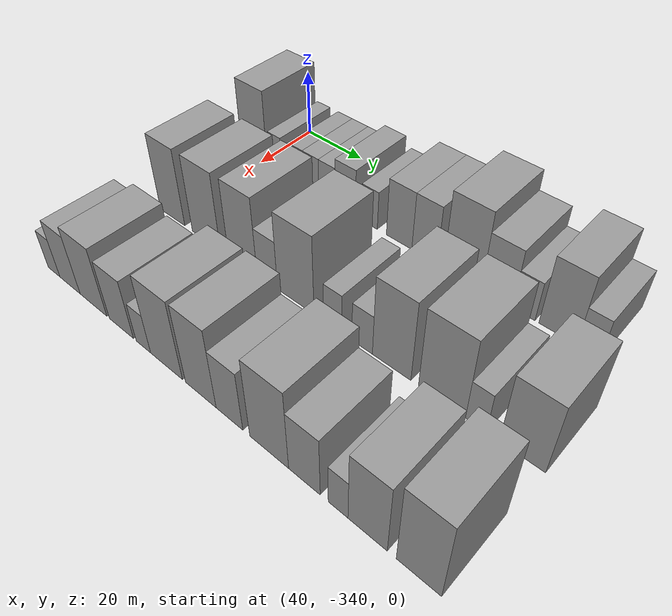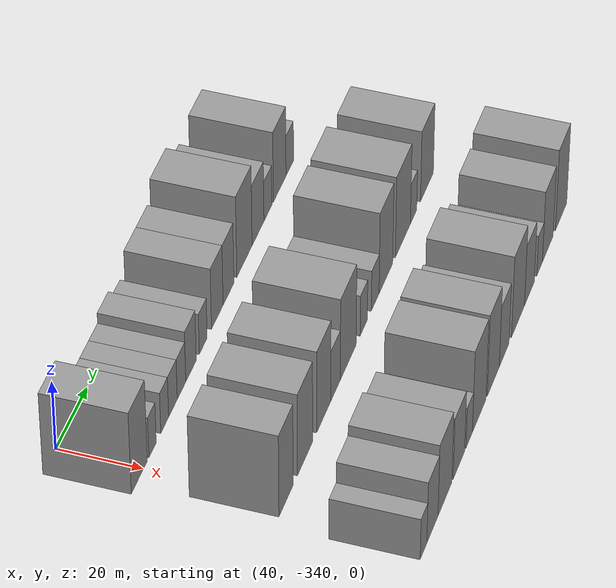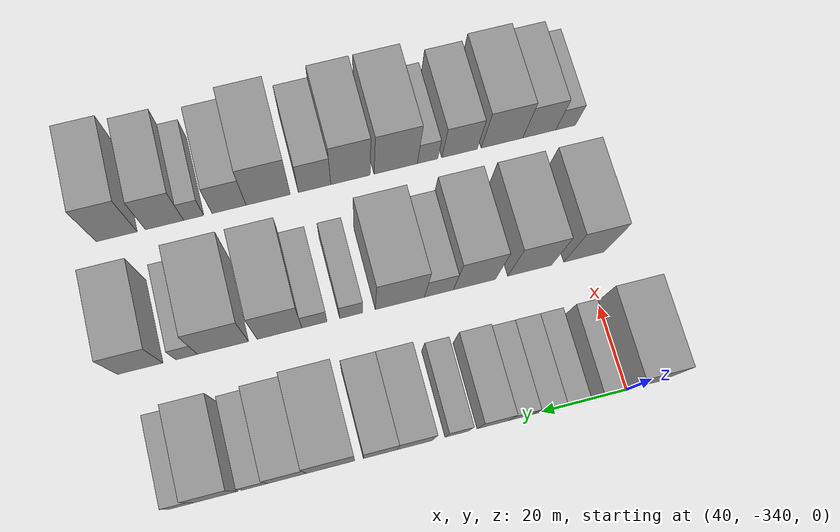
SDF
<sdf version="1.6">
 <world name="default">
  <model name="building_1">
   <static>1</static>
   <pose>50.0000 -342.7937 0 0.000000 0.000000 0.000000</pose>
   <link name="link">
    <pose>0 0 12.00 0 0 0</pose>
    <collision name="collision"><geometry><box><size>20.0000 10.4127 24.0000</size></box></geometry></collision>
    <visual name="visual">
     <cast_shadows>0</cast_shadows>
     <geometry><box><size>20.0000 10.4127 24.0000</size></box></geometry>
     <material>
      <script>
       <uri>model://grey_wall/materials/scripts</uri>
       <uri>model://grey_wall/materials/textures</uri>
       <name>vrc/grey_wall</name>
      </script>
     </material>
    </visual>
   </link>
  </model>
  <model name="building_2">
   <static>1</static>
   <pose>50.0000 -334.1725 0 0.000000 0.000000 0.000000</pose>
   <link name="link">
    <pose>0 0 6.00 0 0 0</pose>
    <collision name="collision"><geometry><box><size>20.0000 4.8296 12.0000</size></box></geometry></collision>
    <visual name="visual">
     <cast_shadows>0</cast_shadows>
     <geometry><box><size>20.0000 4.8296 12.0000</size></box></geometry>
     <material>
      <script>
       <uri>model://grey_wall/materials/scripts</uri>
       <uri>model://grey_wall/materials/textures</uri>
       <name>vrc/grey_wall</name>
      </script>
     </material>
    </visual>
   </link>
  </model>
  <model name="building_3">
   <static>1</static>
   <pose>50.0000 -326.1442 0 0.000000 0.000000 0.000000</pose>
   <link name="link">
    <pose>0 0 6.00 0 0 0</pose>
    <collision name="collision"><geometry><box><size>20.0000 5.2270 12.0000</size></box></geometry></collision>
    <visual name="visual">
     <cast_shadows>0</cast_shadows>
     <geometry><box><size>20.0000 5.2270 12.0000</size></box></geometry>
     <material>
      <script>
       <uri>model://grey_wall/materials/scripts</uri>
       <uri>model://grey_wall/materials/textures</uri>
       <name>vrc/grey_wall</name>
      </script>
     </material>
    </visual>
   </link>
  </model>
  <model name="building_4">
   <static>1</static>
   <pose>50.0000 -320.6596 0 0.000000 0.000000 0.000000</pose>
   <link name="link">
    <pose>0 0 6.00 0 0 0</pose>
    <collision name="collision"><geometry><box><size>20.0000 5.7422 12.0000</size></box></geometry></collision>
    <visual name="visual">
     <cast_shadows>0</cast_shadows>
     <geometry><box><size>20.0000 5.7422 12.0000</size></box></geometry>
     <material>
      <script>
       <uri>model://grey_wall/materials/scripts</uri>
       <uri>model://grey_wall/materials/textures</uri>
       <name>vrc/grey_wall</name>
      </script>
     </material>
    </visual>
   </link>
  </model>
  <model name="building_5">
   <static>1</static>
   <pose>50.0000 -314.8984 0 0.000000 0.000000 0.000000</pose>
   <link name="link">
    <pose>0 0 6.00 0 0 0</pose>
    <collision name="collision"><geometry><box><size>20.0000 5.7800 12.0000</size></box></geometry></collision>
    <visual name="visual">
     <cast_shadows>0</cast_shadows>
     <geometry><box><size>20.0000 5.7800 12.0000</size></box></geometry>
     <material>
      <script>
       <uri>model://grey_wall/materials/scripts</uri>
       <uri>model://grey_wall/materials/textures</uri>
       <name>vrc/grey_wall</name>
      </script>
     </material>
    </visual>
   </link>
  </model>
  <model name="building_6">
   <static>1</static>
   <pose>50.0000 -308.4191 0 0.000000 0.000000 0.000000</pose>
   <link name="link">
    <pose>0 0 7.50 0 0 0</pose>
    <collision name="collision"><geometry><box><size>20.0000 7.1786 15.0000</size></box></geometry></collision>
    <visual name="visual">
     <cast_shadows>0</cast_shadows>
     <geometry><box><size>20.0000 7.1786 15.0000</size></box></geometry>
     <material>
      <script>
       <uri>model://grey_wall/materials/scripts</uri>
       <uri>model://grey_wall/materials/textures</uri>
       <name>vrc/grey_wall</name>
      </script>
     </material>
    </visual>
   </link>
  </model>
  <model name="building_7">
   <static>1</static>
   <pose>50.0000 -300.0968 0 0.000000 0.000000 0.000000</pose>
   <link name="link">
    <pose>0 0 6.00 0 0 0</pose>
    <collision name="collision"><geometry><box><size>20.0000 5.4661 12.0000</size></box></geometry></collision>
    <visual name="visual">
     <cast_shadows>0</cast_shadows>
     <geometry><box><size>20.0000 5.4661 12.0000</size></box></geometry>
     <material>
      <script>
       <uri>model://grey_wall/materials/scripts</uri>
       <uri>model://grey_wall/materials/textures</uri>
       <name>vrc/grey_wall</name>
      </script>
     </material>
    </visual>
   </link>
  </model>
  <model name="building_8">
   <static>1</static>
   <pose>50.0000 -290.2836 0 0.000000 0.000000 0.000000</pose>
   <link name="link">
    <pose>0 0 9.00 0 0 0</pose>
    <collision name="collision"><geometry><box><size>20.0000 8.1602 18.0000</size></box></geometry></collision>
    <visual name="visual">
     <cast_shadows>0</cast_shadows>
     <geometry><box><size>20.0000 8.1602 18.0000</size></box></geometry>
     <material>
      <script>
       <uri>model://grey_wall/materials/scripts</uri>
       <uri>model://grey_wall/materials/textures</uri>
       <name>vrc/grey_wall</name>
      </script>
     </material>
    </visual>
   </link>
  </model>
  <model name="building_9">
   <static>1</static>
   <pose>50.0000 -282.3586 0 0.000000 0.000000 0.000000</pose>
   <link name="link">
    <pose>0 0 9.00 0 0 0</pose>
    <collision name="collision"><geometry><box><size>20.0000 7.6899 18.0000</size></box></geometry></collision>
    <visual name="visual">
     <cast_shadows>0</cast_shadows>
     <geometry><box><size>20.0000 7.6899 18.0000</size></box></geometry>
     <material>
      <script>
       <uri>model://grey_wall/materials/scripts</uri>
       <uri>model://grey_wall/materials/textures</uri>
       <name>vrc/grey_wall</name>
      </script>
     </material>
    </visual>
   </link>
  </model>
  <model name="building_10">
   <static>1</static>
   <pose>50.0000 -271.0136 0 0.000000 0.000000 0.000000</pose>
   <link name="link">
    <pose>0 0 12.00 0 0 0</pose>
    <collision name="collision"><geometry><box><size>20.0000 11.0002 24.0000</size></box></geometry></collision>
    <visual name="visual">
     <cast_shadows>0</cast_shadows>
     <geometry><box><size>20.0000 11.0002 24.0000</size></box></geometry>
     <material>
      <script>
       <uri>model://grey_wall/materials/scripts</uri>
       <uri>model://grey_wall/materials/textures</uri>
       <name>vrc/grey_wall</name>
      </script>
     </material>
    </visual>
   </link>
  </model>
  <model name="building_11">
   <static>1</static>
   <pose>50.0000 -261.1677 0 0.000000 0.000000 0.000000</pose>
   <link name="link">
    <pose>0 0 9.00 0 0 0</pose>
    <collision name="collision"><geometry><box><size>20.0000 8.6915 18.0000</size></box></geometry></collision>
    <visual name="visual">
     <cast_shadows>0</cast_shadows>
     <geometry><box><size>20.0000 8.6915 18.0000</size></box></geometry>
     <material>
      <script>
       <uri>model://grey_wall/materials/scripts</uri>
       <uri>model://grey_wall/materials/textures</uri>
       <name>vrc/grey_wall</name>
      </script>
     </material>
    </visual>
   </link>
  </model>
  <model name="building_12">
   <static>1</static>
   <pose>50.0000 -253.8751 0 0.000000 0.000000 0.000000</pose>
   <link name="link">
    <pose>0 0 6.00 0 0 0</pose>
    <collision name="collision"><geometry><box><size>20.0000 5.8936 12.0000</size></box></geometry></collision>
    <visual name="visual">
     <cast_shadows>0</cast_shadows>
     <geometry><box><size>20.0000 5.8936 12.0000</size></box></geometry>
     <material>
      <script>
       <uri>model://grey_wall/materials/scripts</uri>
       <uri>model://grey_wall/materials/textures</uri>
       <name>vrc/grey_wall</name>
      </script>
     </material>
    </visual>
   </link>
  </model>
  <model name="building_13">
   <static>1</static>
   <pose>50.0000 -245.1650 0 0.000000 0.000000 0.000000</pose>
   <link name="link">
    <pose>0 0 10.50 0 0 0</pose>
    <collision name="collision"><geometry><box><size>20.0000 9.5266 21.0000</size></box></geometry></collision>
    <visual name="visual">
     <cast_shadows>0</cast_shadows>
     <geometry><box><size>20.0000 9.5266 21.0000</size></box></geometry>
     <material>
      <script>
       <uri>model://grey_wall/materials/scripts</uri>
       <uri>model://grey_wall/materials/textures</uri>
       <name>vrc/grey_wall</name>
      </script>
     </material>
    </visual>
   </link>
  </model>
  <model name="building_14">
   <static>1</static>
   <pose>50.0000 -237.5346 0 0.000000 0.000000 0.000000</pose>
   <link name="link">
    <pose>0 0 6.00 0 0 0</pose>
    <collision name="collision"><geometry><box><size>20.0000 5.7343 12.0000</size></box></geometry></collision>
    <visual name="visual">
     <cast_shadows>0</cast_shadows>
     <geometry><box><size>20.0000 5.7343 12.0000</size></box></geometry>
     <material>
      <script>
       <uri>model://grey_wall/materials/scripts</uri>
       <uri>model://grey_wall/materials/textures</uri>
       <name>vrc/grey_wall</name>
      </script>
     </material>
    </visual>
   </link>
  </model>
  <model name="building_79">
   <static>1</static>
   <pose>82.0000 -340.0592 0 0.000000 0.000000 0.000000</pose>
   <link name="link">
    <pose>0 0 12.00 0 0 0</pose>
    <collision name="collision"><geometry><box><size>20.0000 9.8815 24.0000</size></box></geometry></collision>
    <visual name="visual">
     <cast_shadows>0</cast_shadows>
     <geometry><box><size>20.0000 9.8815 24.0000</size></box></geometry>
     <material>
      <script>
       <uri>model://grey_wall/materials/scripts</uri>
       <uri>model://grey_wall/materials/textures</uri>
       <name>vrc/grey_wall</name>
      </script>
     </material>
    </visual>
   </link>
  </model>
  <model name="building_80">
   <static>1</static>
   <pose>82.0000 -326.7852 0 0.000000 0.000000 0.000000</pose>
   <link name="link">
    <pose>0 0 12.00 0 0 0</pose>
    <collision name="collision"><geometry><box><size>20.0000 10.6666 24.0000</size></box></geometry></collision>
    <visual name="visual">
     <cast_shadows>0</cast_shadows>
     <geometry><box><size>20.0000 10.6666 24.0000</size></box></geometry>
     <material>
      <script>
       <uri>model://grey_wall/materials/scripts</uri>
       <uri>model://grey_wall/materials/textures</uri>
       <name>vrc/grey_wall</name>
      </script>
     </material>
    </visual>
   </link>
  </model>
  <model name="building_81">
   <static>1</static>
   <pose>82.0000 -313.3594 0 0.000000 0.000000 0.000000</pose>
   <link name="link">
    <pose>0 0 12.00 0 0 0</pose>
    <collision name="collision"><geometry><box><size>20.0000 10.1849 24.0000</size></box></geometry></collision>
    <visual name="visual">
     <cast_shadows>0</cast_shadows>
     <geometry><box><size>20.0000 10.1849 24.0000</size></box></geometry>
     <material>
      <script>
       <uri>model://grey_wall/materials/scripts</uri>
       <uri>model://grey_wall/materials/textures</uri>
       <name>vrc/grey_wall</name>
      </script>
     </material>
    </visual>
   </link>
  </model>
  <model name="building_82">
   <static>1</static>
   <pose>82.0000 -304.7971 0 0.000000 0.000000 0.000000</pose>
   <link name="link">
    <pose>0 0 7.50 0 0 0</pose>
    <collision name="collision"><geometry><box><size>20.0000 6.9398 15.0000</size></box></geometry></collision>
    <visual name="visual">
     <cast_shadows>0</cast_shadows>
     <geometry><box><size>20.0000 6.9398 15.0000</size></box></geometry>
     <material>
      <script>
       <uri>model://grey_wall/materials/scripts</uri>
       <uri>model://grey_wall/materials/textures</uri>
       <name>vrc/grey_wall</name>
      </script>
     </material>
    </visual>
   </link>
  </model>
  <model name="building_83">
   <static>1</static>
   <pose>82.0000 -295.4316 0 0.000000 0.000000 0.000000</pose>
   <link name="link">
    <pose>0 0 12.00 0 0 0</pose>
    <collision name="collision"><geometry><box><size>20.0000 11.7912 24.0000</size></box></geometry></collision>
    <visual name="visual">
     <cast_shadows>0</cast_shadows>
     <geometry><box><size>20.0000 11.7912 24.0000</size></box></geometry>
     <material>
      <script>
       <uri>model://grey_wall/materials/scripts</uri>
       <uri>model://grey_wall/materials/textures</uri>
       <name>vrc/grey_wall</name>
      </script>
     </material>
    </visual>
   </link>
  </model>
  <model name="building_84">
   <static>1</static>
   <pose>82.0000 -283.8098 0 0.000000 0.000000 0.000000</pose>
   <link name="link">
    <pose>0 0 6.00 0 0 0</pose>
    <collision name="collision"><geometry><box><size>20.0000 5.4525 12.0000</size></box></geometry></collision>
    <visual name="visual">
     <cast_shadows>0</cast_shadows>
     <geometry><box><size>20.0000 5.4525 12.0000</size></box></geometry>
     <material>
      <script>
       <uri>model://grey_wall/materials/scripts</uri>
       <uri>model://grey_wall/materials/textures</uri>
       <name>vrc/grey_wall</name>
      </script>
     </material>
    </visual>
   </link>
  </model>
  <model name="building_85">
   <static>1</static>
   <pose>82.0000 -275.1099 0 0.000000 0.000000 0.000000</pose>
   <link name="link">
    <pose>0 0 6.00 0 0 0</pose>
    <collision name="collision"><geometry><box><size>20.0000 5.9472 12.0000</size></box></geometry></collision>
    <visual name="visual">
     <cast_shadows>0</cast_shadows>
     <geometry><box><size>20.0000 5.9472 12.0000</size></box></geometry>
     <material>
      <script>
       <uri>model://grey_wall/materials/scripts</uri>
       <uri>model://grey_wall/materials/textures</uri>
       <name>vrc/grey_wall</name>
      </script>
     </material>
    </visual>
   </link>
  </model>
  <model name="building_86">
   <static>1</static>
   <pose>82.0000 -266.8457 0 0.000000 0.000000 0.000000</pose>
   <link name="link">
    <pose>0 0 12.00 0 0 0</pose>
    <collision name="collision"><geometry><box><size>20.0000 10.5811 24.0000</size></box></geometry></collision>
    <visual name="visual">
     <cast_shadows>0</cast_shadows>
     <geometry><box><size>20.0000 10.5811 24.0000</size></box></geometry>
     <material>
      <script>
       <uri>model://grey_wall/materials/scripts</uri>
       <uri>model://grey_wall/materials/textures</uri>
       <name>vrc/grey_wall</name>
      </script>
     </material>
    </visual>
   </link>
  </model>
  <model name="building_87">
   <static>1</static>
   <pose>82.0000 -253.5846 0 0.000000 0.000000 0.000000</pose>
   <link name="link">
    <pose>0 0 12.00 0 0 0</pose>
    <collision name="collision"><geometry><box><size>20.0000 11.9411 24.0000</size></box></geometry></collision>
    <visual name="visual">
     <cast_shadows>0</cast_shadows>
     <geometry><box><size>20.0000 11.9411 24.0000</size></box></geometry>
     <material>
      <script>
       <uri>model://grey_wall/materials/scripts</uri>
       <uri>model://grey_wall/materials/textures</uri>
       <name>vrc/grey_wall</name>
      </script>
     </material>
    </visual>
   </link>
  </model>
  <model name="building_88">
   <static>1</static>
   <pose>82.0000 -245.0876 0 0.000000 0.000000 0.000000</pose>
   <link name="link">
    <pose>0 0 6.00 0 0 0</pose>
    <collision name="collision"><geometry><box><size>20.0000 5.0531 12.0000</size></box></geometry></collision>
    <visual name="visual">
     <cast_shadows>0</cast_shadows>
     <geometry><box><size>20.0000 5.0531 12.0000</size></box></geometry>
     <material>
      <script>
       <uri>model://grey_wall/materials/scripts</uri>
       <uri>model://grey_wall/materials/textures</uri>
       <name>vrc/grey_wall</name>
      </script>
     </material>
    </visual>
   </link>
  </model>
  <model name="building_89">
   <static>1</static>
   <pose>82.0000 -234.3371 0 0.000000 0.000000 0.000000</pose>
   <link name="link">
    <pose>0 0 10.50 0 0 0</pose>
    <collision name="collision"><geometry><box><size>20.0000 10.4478 21.0000</size></box></geometry></collision>
    <visual name="visual">
     <cast_shadows>0</cast_shadows>
     <geometry><box><size>20.0000 10.4478 21.0000</size></box></geometry>
     <material>
      <script>
       <uri>model://grey_wall/materials/scripts</uri>
       <uri>model://grey_wall/materials/textures</uri>
       <name>vrc/grey_wall</name>
      </script>
     </material>
    </visual>
   </link>
  </model>
  <model name="building_153">
   <static>1</static>
   <pose>114.0000 -345.4976 0 0.000000 0.000000 0.000000</pose>
   <link name="link">
    <pose>0 0 6.00 0 0 0</pose>
    <collision name="collision"><geometry><box><size>20.0000 5.0047 12.0000</size></box></geometry></collision>
    <visual name="visual">
     <cast_shadows>0</cast_shadows>
     <geometry><box><size>20.0000 5.0047 12.0000</size></box></geometry>
     <material>
      <script>
       <uri>model://grey_wall/materials/scripts</uri>
       <uri>model://grey_wall/materials/textures</uri>
       <name>vrc/grey_wall</name>
      </script>
     </material>
    </visual>
   </link>
  </model>
  <model name="building_154">
   <static>1</static>
   <pose>114.0000 -338.8361 0 0.000000 0.000000 0.000000</pose>
   <link name="link">
    <pose>0 0 9.00 0 0 0</pose>
    <collision name="collision"><geometry><box><size>20.0000 8.3183 18.0000</size></box></geometry></collision>
    <visual name="visual">
     <cast_shadows>0</cast_shadows>
     <geometry><box><size>20.0000 8.3183 18.0000</size></box></geometry>
     <material>
      <script>
       <uri>model://grey_wall/materials/scripts</uri>
       <uri>model://grey_wall/materials/textures</uri>
       <name>vrc/grey_wall</name>
      </script>
     </material>
    </visual>
   </link>
  </model>
  <model name="building_155">
   <static>1</static>
   <pose>114.0000 -329.4505 0 0.000000 0.000000 0.000000</pose>
   <link name="link">
    <pose>0 0 10.50 0 0 0</pose>
    <collision name="collision"><geometry><box><size>20.0000 10.4529 21.0000</size></box></geometry></collision>
    <visual name="visual">
     <cast_shadows>0</cast_shadows>
     <geometry><box><size>20.0000 10.4529 21.0000</size></box></geometry>
     <material>
      <script>
       <uri>model://grey_wall/materials/scripts</uri>
       <uri>model://grey_wall/materials/textures</uri>
       <name>vrc/grey_wall</name>
      </script>
     </material>
    </visual>
   </link>
  </model>
  <model name="building_156">
   <static>1</static>
   <pose>114.0000 -318.7933 0 0.000000 0.000000 0.000000</pose>
   <link name="link">
    <pose>0 0 9.00 0 0 0</pose>
    <collision name="collision"><geometry><box><size>20.0000 8.8615 18.0000</size></box></geometry></collision>
    <visual name="visual">
     <cast_shadows>0</cast_shadows>
     <geometry><box><size>20.0000 8.8615 18.0000</size></box></geometry>
     <material>
      <script>
       <uri>model://grey_wall/materials/scripts</uri>
       <uri>model://grey_wall/materials/textures</uri>
       <name>vrc/grey_wall</name>
      </script>
     </material>
    </visual>
   </link>
  </model>
  <model name="building_157">
   <static>1</static>
   <pose>114.0000 -310.8204 0 0.000000 0.000000 0.000000</pose>
   <link name="link">
    <pose>0 0 6.00 0 0 0</pose>
    <collision name="collision"><geometry><box><size>20.0000 5.0845 12.0000</size></box></geometry></collision>
    <visual name="visual">
     <cast_shadows>0</cast_shadows>
     <geometry><box><size>20.0000 5.0845 12.0000</size></box></geometry>
     <material>
      <script>
       <uri>model://grey_wall/materials/scripts</uri>
       <uri>model://grey_wall/materials/textures</uri>
       <name>vrc/grey_wall</name>
      </script>
     </material>
    </visual>
   </link>
  </model>
  <model name="building_158">
   <static>1</static>
   <pose>114.0000 -302.9145 0 0.000000 0.000000 0.000000</pose>
   <link name="link">
    <pose>0 0 12.00 0 0 0</pose>
    <collision name="collision"><geometry><box><size>20.0000 10.7272 24.0000</size></box></geometry></collision>
    <visual name="visual">
     <cast_shadows>0</cast_shadows>
     <geometry><box><size>20.0000 10.7272 24.0000</size></box></geometry>
     <material>
      <script>
       <uri>model://grey_wall/materials/scripts</uri>
       <uri>model://grey_wall/materials/textures</uri>
       <name>vrc/grey_wall</name>
      </script>
     </material>
    </visual>
   </link>
  </model>
  <model name="building_159">
   <static>1</static>
   <pose>114.0000 -291.7232 0 0.000000 0.000000 0.000000</pose>
   <link name="link">
    <pose>0 0 12.00 0 0 0</pose>
    <collision name="collision"><geometry><box><size>20.0000 9.6556 24.0000</size></box></geometry></collision>
    <visual name="visual">
     <cast_shadows>0</cast_shadows>
     <geometry><box><size>20.0000 9.6556 24.0000</size></box></geometry>
     <material>
      <script>
       <uri>model://grey_wall/materials/scripts</uri>
       <uri>model://grey_wall/materials/textures</uri>
       <name>vrc/grey_wall</name>
      </script>
     </material>
    </visual>
   </link>
  </model>
  <model name="building_160">
   <static>1</static>
   <pose>114.0000 -282.9194 0 0.000000 0.000000 0.000000</pose>
   <link name="link">
    <pose>0 0 9.00 0 0 0</pose>
    <collision name="collision"><geometry><box><size>20.0000 7.9520 18.0000</size></box></geometry></collision>
    <visual name="visual">
     <cast_shadows>0</cast_shadows>
     <geometry><box><size>20.0000 7.9520 18.0000</size></box></geometry>
     <material>
      <script>
       <uri>model://grey_wall/materials/scripts</uri>
       <uri>model://grey_wall/materials/textures</uri>
       <name>vrc/grey_wall</name>
      </script>
     </material>
    </visual>
   </link>
  </model>
  <model name="building_161">
   <static>1</static>
   <pose>114.0000 -271.5538 0 0.000000 0.000000 0.000000</pose>
   <link name="link">
    <pose>0 0 12.00 0 0 0</pose>
    <collision name="collision"><geometry><box><size>20.0000 10.7790 24.0000</size></box></geometry></collision>
    <visual name="visual">
     <cast_shadows>0</cast_shadows>
     <geometry><box><size>20.0000 10.7790 24.0000</size></box></geometry>
     <material>
      <script>
       <uri>model://grey_wall/materials/scripts</uri>
       <uri>model://grey_wall/materials/textures</uri>
       <name>vrc/grey_wall</name>
      </script>
     </material>
    </visual>
   </link>
  </model>
  <model name="building_162">
   <static>1</static>
   <pose>114.0000 -262.0412 0 0.000000 0.000000 0.000000</pose>
   <link name="link">
    <pose>0 0 9.00 0 0 0</pose>
    <collision name="collision"><geometry><box><size>20.0000 8.2462 18.0000</size></box></geometry></collision>
    <visual name="visual">
     <cast_shadows>0</cast_shadows>
     <geometry><box><size>20.0000 8.2462 18.0000</size></box></geometry>
     <material>
      <script>
       <uri>model://grey_wall/materials/scripts</uri>
       <uri>model://grey_wall/materials/textures</uri>
       <name>vrc/grey_wall</name>
      </script>
     </material>
    </visual>
   </link>
  </model>
  <model name="building_163">
   <static>1</static>
   <pose>114.0000 -253.4871 0 0.000000 0.000000 0.000000</pose>
   <link name="link">
    <pose>0 0 6.00 0 0 0</pose>
    <collision name="collision"><geometry><box><size>20.0000 4.8620 12.0000</size></box></geometry></collision>
    <visual name="visual">
     <cast_shadows>0</cast_shadows>
     <geometry><box><size>20.0000 4.8620 12.0000</size></box></geometry>
     <material>
      <script>
       <uri>model://grey_wall/materials/scripts</uri>
       <uri>model://grey_wall/materials/textures</uri>
       <name>vrc/grey_wall</name>
      </script>
     </material>
    </visual>
   </link>
  </model>
  <model name="building_164">
   <static>1</static>
   <pose>114.0000 -246.4592 0 0.000000 0.000000 0.000000</pose>
   <link name="link">
    <pose>0 0 10.50 0 0 0</pose>
    <collision name="collision"><geometry><box><size>20.0000 9.1939 21.0000</size></box></geometry></collision>
    <visual name="visual">
     <cast_shadows>0</cast_shadows>
     <geometry><box><size>20.0000 9.1939 21.0000</size></box></geometry>
     <material>
      <script>
       <uri>model://grey_wall/materials/scripts</uri>
       <uri>model://grey_wall/materials/textures</uri>
       <name>vrc/grey_wall</name>
      </script>
     </material>
    </visual>
   </link>
  </model>
  <model name="building_165">
   <static>1</static>
   <pose>114.0000 -234.9627 0 0.000000 0.000000 0.000000</pose>
   <link name="link">
    <pose>0 0 12.00 0 0 0</pose>
    <collision name="collision"><geometry><box><size>20.0000 9.7991 24.0000</size></box></geometry></collision>
    <visual name="visual">
     <cast_shadows>0</cast_shadows>
     <geometry><box><size>20.0000 9.7991 24.0000</size></box></geometry>
     <material>
      <script>
       <uri>model://grey_wall/materials/scripts</uri>
       <uri>model://grey_wall/materials/textures</uri>
       <name>vrc/grey_wall</name>
      </script>
     </material>
    </visual>
   </link>
  </model>
 </world>
</sdf>
